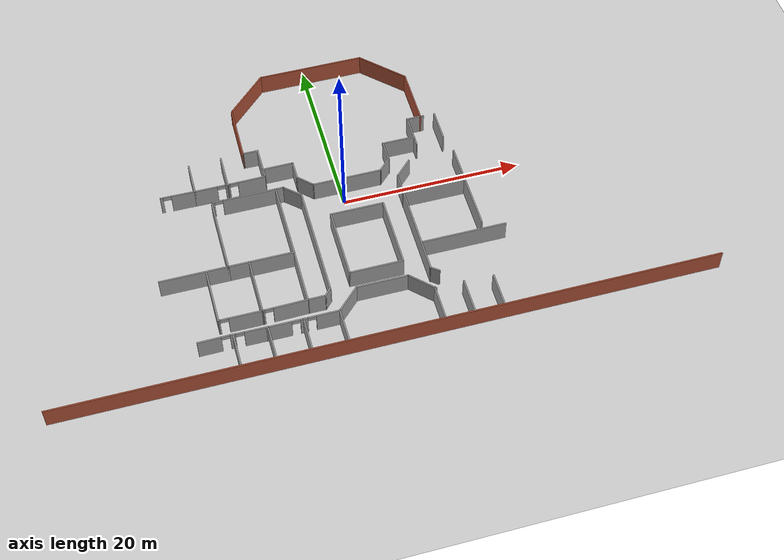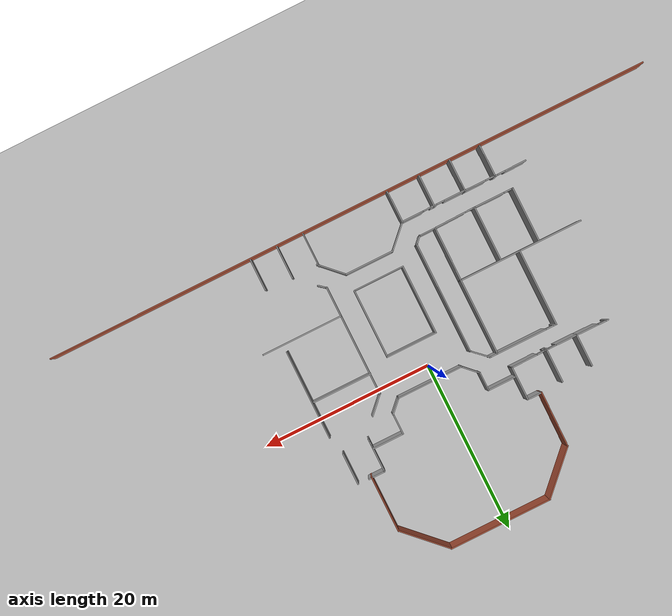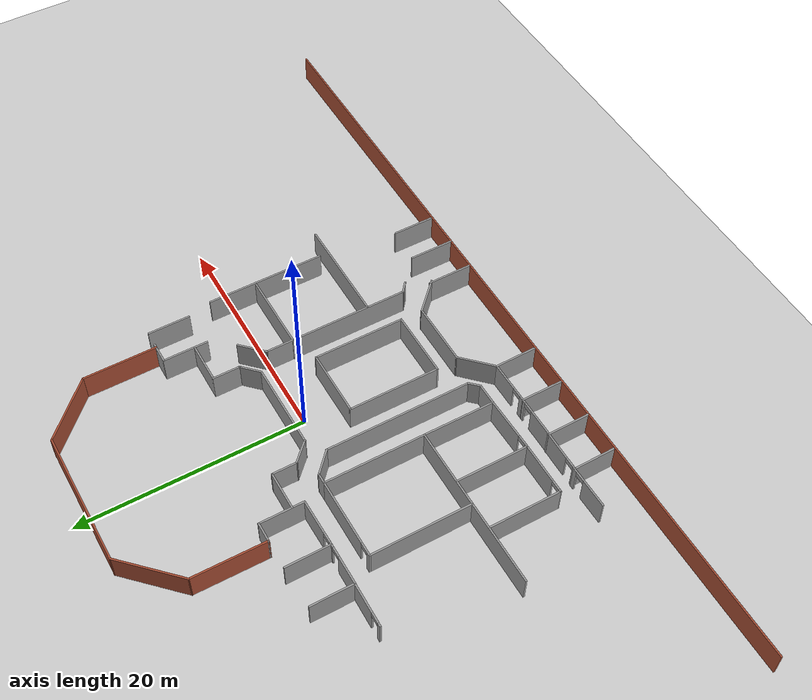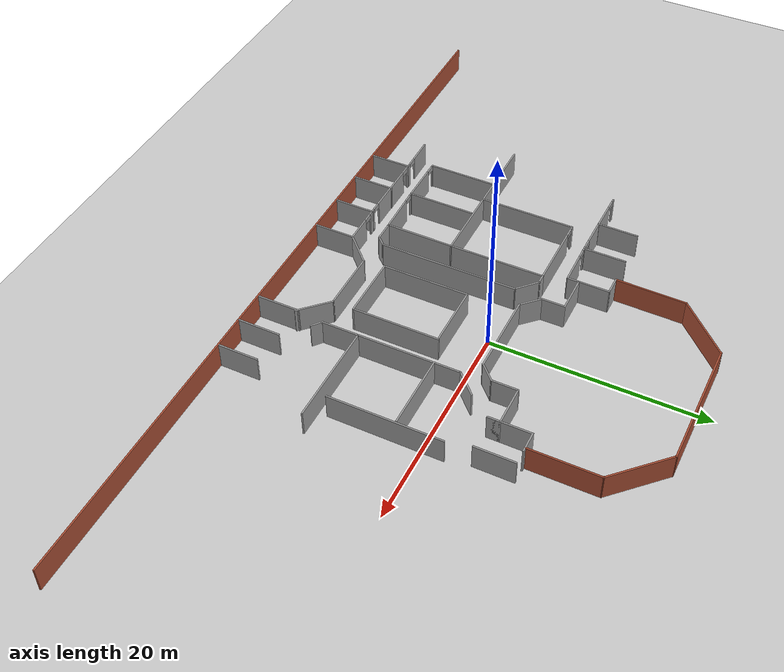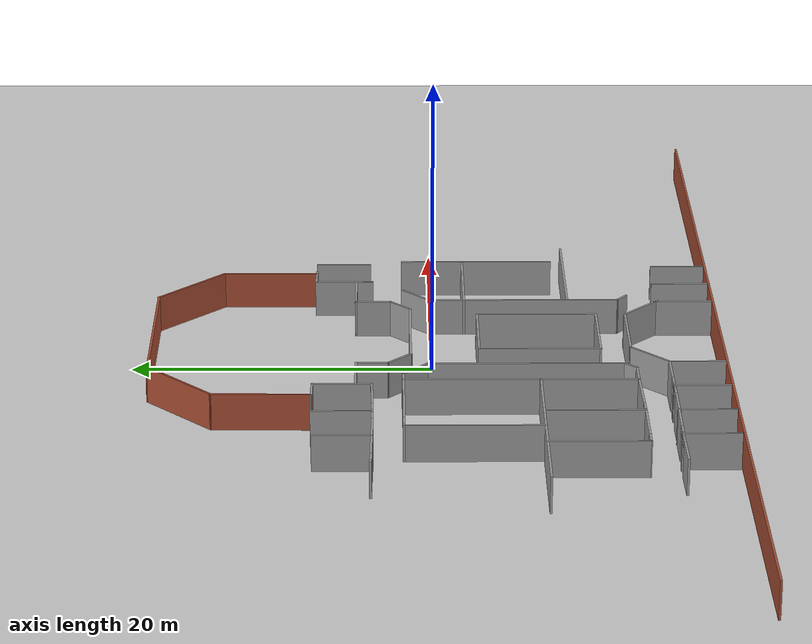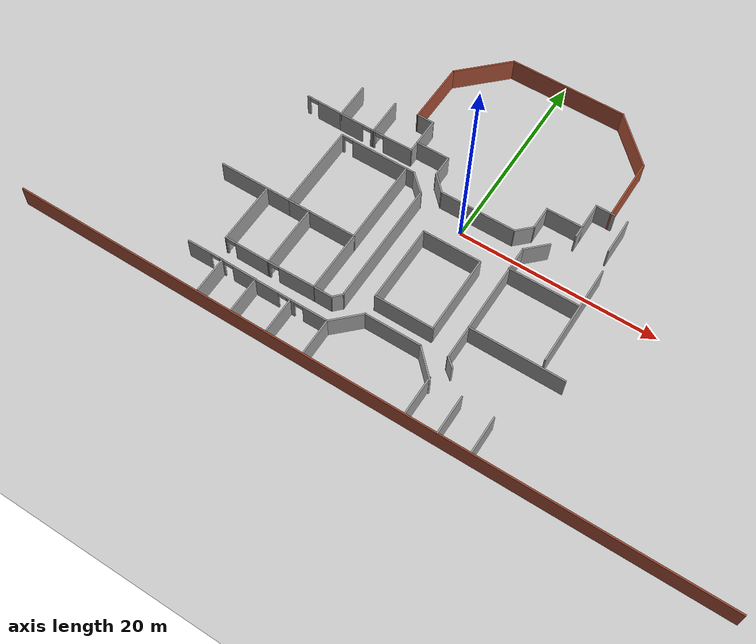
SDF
<sdf version="1.7">
 <world name="default">
  <model name="ground_plane">
   <static>1</static>
   <link name="link">
    <collision name="collision">
     <geometry><plane><normal>0 0 1</normal><size>100 100</size></plane></geometry>
     <surface>
      <contact><collide_bitmask>65535</collide_bitmask></contact>
      <friction><ode><mu>100</mu><mu2>50</mu2></ode></friction>
     </surface>
    </collision>
    <visual name="visual">
     <cast_shadows>0</cast_shadows>
     <geometry><plane><normal>0 0 1</normal><size>100 100</size></plane></geometry>
     <material>
      <script><uri>file://media/materials/scripts/gazebo.material</uri><name>Gazebo/Grey</name></script>
     </material>
    </visual>
   </link>
  </model>
  <model name="OEC_2F_B">
   <pose>0.733156 -0.285133 0 0 -0 0</pose>
   <link name="Wall_101">
    <pose>-18.3822 4.28827 0 0 -0 3.12969</pose>
    <visual name="Wall_101_Visual_0">
     <pose>-0.61431 0 1.25 0 -0 0</pose>
     <geometry><box><size>2.68761 0.15 2.5</size></box></geometry>
     <material>
      <script><uri>file://media/materials/scripts/gazebo.material</uri><name>Gazebo/Grey</name></script>
      <ambient>1 1 1 1</ambient>
     </material>
     <meta><layer>0</layer></meta>
    </visual>
    <collision name="Wall_101_Collision_0">
     <geometry><box><size>2.68761 0.15 2.5</size></box></geometry>
     <pose>-0.61431 0 1.25 0 -0 0</pose>
    </collision>
    <visual name="Wall_101_Visual_1">
     <pose>1.7938 0 1.25 0 -0 0</pose>
     <geometry><box><size>0.328619 0.15 2.5</size></box></geometry>
     <material>
      <script><uri>file://media/materials/scripts/gazebo.material</uri><name>Gazebo/Grey</name></script>
      <ambient>1 1 1 1</ambient>
     </material>
     <meta><layer>0</layer></meta>
    </visual>
    <collision name="Wall_101_Collision_1">
     <geometry><box><size>0.328619 0.15 2.5</size></box></geometry>
     <pose>1.7938 0 1.25 0 -0 0</pose>
    </collision>
    <visual name="Wall_101_Visual_2">
     <pose>1.17949 0 2.25 0 -0 0</pose>
     <geometry><box><size>0.9 0.15 0.5</size></box></geometry>
     <material>
      <script><uri>file://media/materials/scripts/gazebo.material</uri><name>Gazebo/Grey</name></script>
      <ambient>1 1 1 1</ambient>
     </material>
     <meta><layer>0</layer></meta>
    </visual>
    <collision name="Wall_101_Collision_2">
     <geometry><box><size>0.9 0.15 0.5</size></box></geometry>
     <pose>1.17949 0 2.25 0 -0 0</pose>
    </collision>
   </link>
   <link name="Wall_109">
    <collision name="Wall_109_Collision">
     <geometry><box><size>1 0.15 2.5</size></box></geometry>
     <pose>0 0 1.25 0 -0 0</pose>
    </collision>
    <visual name="Wall_109_Visual">
     <pose>0 0 1.25 0 -0 0</pose>
     <geometry><box><size>1 0.15 2.5</size></box></geometry>
     <material>
      <script><uri>file://media/materials/scripts/gazebo.material</uri><name>Gazebo/Grey</name></script>
      <ambient>1 1 1 1</ambient>
     </material>
     <meta><layer>0</layer></meta>
    </visual>
    <pose>-7.50932 2.23651 0 0 -0 3.14159</pose>
   </link>
   <link name="Wall_110">
    <pose>-11.4843 2.23651 0 0 -0 3.14159</pose>
    <visual name="Wall_110_Visual_0">
     <pose>-0.645977 0 1.25 0 -0 0</pose>
     <geometry><box><size>5.95805 0.15 2.5</size></box></geometry>
     <material>
      <script><uri>file://media/materials/scripts/gazebo.material</uri><name>Gazebo/Grey</name></script>
      <ambient>1 1 1 1</ambient>
     </material>
     <meta><layer>0</layer></meta>
    </visual>
    <collision name="Wall_110_Collision_0">
     <geometry><box><size>5.95805 0.15 2.5</size></box></geometry>
     <pose>-0.645977 0 1.25 0 -0 0</pose>
    </collision>
    <visual name="Wall_110_Visual_1">
     <pose>3.42902 0 1.25 0 -0 0</pose>
     <geometry><box><size>0.391954 0.15 2.5</size></box></geometry>
     <material>
      <script><uri>file://media/materials/scripts/gazebo.material</uri><name>Gazebo/Grey</name></script>
      <ambient>1 1 1 1</ambient>
     </material>
     <meta><layer>0</layer></meta>
    </visual>
    <collision name="Wall_110_Collision_1">
     <geometry><box><size>0.391954 0.15 2.5</size></box></geometry>
     <pose>3.42902 0 1.25 0 -0 0</pose>
    </collision>
    <visual name="Wall_110_Visual_2">
     <pose>2.78305 0 2.25 0 -0 0</pose>
     <geometry><box><size>0.9 0.15 0.5</size></box></geometry>
     <material>
      <script><uri>file://media/materials/scripts/gazebo.material</uri><name>Gazebo/Grey</name></script>
      <ambient>1 1 1 1</ambient>
     </material>
     <meta><layer>0</layer></meta>
    </visual>
    <collision name="Wall_110_Collision_2">
     <geometry><box><size>0.9 0.15 0.5</size></box></geometry>
     <pose>2.78305 0 2.25 0 -0 0</pose>
    </collision>
   </link>
   <link name="Wall_118">
    <collision name="Wall_118_Collision">
     <geometry><box><size>9 0.15 2.5</size></box></geometry>
     <pose>0 0 1.25 0 -0 0</pose>
    </collision>
    <visual name="Wall_118_Visual">
     <pose>0 0 1.25 0 -0 0</pose>
     <geometry><box><size>9 0.15 2.5</size></box></geometry>
     <material>
      <script><uri>file://media/materials/scripts/gazebo.material</uri><name>Gazebo/Grey</name></script>
      <ambient>1 1 1 1</ambient>
     </material>
     <meta><layer>0</layer></meta>
    </visual>
    <pose>-7.93432 -2.1885 0 0 -0 -1.5708</pose>
   </link>
   <link name="Wall_120">
    <collision name="Wall_120_Collision">
     <geometry><box><size>9 0.15 2.5</size></box></geometry>
     <pose>0 0 1.25 0 -0 0</pose>
    </collision>
    <visual name="Wall_120_Visual">
     <pose>0 0 1.25 0 -0 0</pose>
     <geometry><box><size>9 0.15 2.5</size></box></geometry>
     <material>
      <script><uri>file://media/materials/scripts/gazebo.material</uri><name>Gazebo/Grey</name></script>
      <ambient>1 1 1 1</ambient>
     </material>
     <meta><layer>0</layer></meta>
    </visual>
    <pose>-15.0343 -2.1885 0 0 -0 -1.5708</pose>
   </link>
   <link name="Wall_127">
    <collision name="Wall_127_Collision">
     <geometry><box><size>7.25 0.15 2.5</size></box></geometry>
     <pose>0 0 1.25 0 -0 0</pose>
    </collision>
    <visual name="Wall_127_Visual">
     <pose>0 0 1.25 0 -0 0</pose>
     <geometry><box><size>7.25 0.15 2.5</size></box></geometry>
     <material>
      <script><uri>file://media/materials/scripts/gazebo.material</uri><name>Gazebo/Grey</name></script>
      <ambient>1 1 1 1</ambient>
     </material>
     <meta><layer>0</layer></meta>
    </visual>
    <pose>-11.4843 -6.6135 0 0 -0 3.14159</pose>
   </link>
   <link name="Wall_128">
    <collision name="Wall_128_Collision">
     <geometry><box><size>7.5 0.15 2.5</size></box></geometry>
     <pose>0 0 1.25 0 -0 0</pose>
    </collision>
    <visual name="Wall_128_Visual">
     <pose>0 0 1.25 0 -0 0</pose>
     <geometry><box><size>7.5 0.15 2.5</size></box></geometry>
     <material>
      <script><uri>file://media/materials/scripts/gazebo.material</uri><name>Gazebo/Grey</name></script>
      <ambient>1 1 1 1</ambient>
     </material>
     <meta><layer>0</layer></meta>
    </visual>
    <pose>-18.7093 -6.6135 0 0 -0 3.14159</pose>
   </link>
   <link name="Wall_14">
    <collision name="Wall_14_Collision">
     <geometry><box><size>6.57649 0.15 2.5</size></box></geometry>
     <pose>0 0 1.25 0 -0 0</pose>
    </collision>
    <visual name="Wall_14_Visual">
     <pose>0 0 1.25 0 -0 0</pose>
     <geometry><box><size>6.57649 0.15 2.5</size></box></geometry>
     <material>
      <script><uri>file://media/materials/scripts/gazebo.material</uri><name>Gazebo/Bricks</name></script>
      <ambient>1 1 1 1</ambient>
     </material>
     <meta><layer>0</layer></meta>
    </visual>
    <pose>-10.2885 11.3541 0 0 -0 1.55896</pose>
   </link>
   <link name="Wall_15">
    <collision name="Wall_15_Collision">
     <geometry><box><size>6.25 0.15 2.5</size></box></geometry>
     <pose>0 0 1.25 0 -0 0</pose>
    </collision>
    <visual name="Wall_15_Visual">
     <pose>0 0 1.25 0 -0 0</pose>
     <geometry><box><size>6.25 0.15 2.5</size></box></geometry>
     <material>
      <script><uri>file://media/materials/scripts/gazebo.material</uri><name>Gazebo/Bricks</name></script>
      <ambient>1 1 1 1</ambient>
     </material>
     <meta><layer>0</layer></meta>
    </visual>
    <pose>-8.09384 16.7238 0 0 -0 0.785398</pose>
   </link>
   <link name="Wall_168">
    <collision name="Wall_168_Collision">
     <geometry><box><size>6.5 0.15 2.5</size></box></geometry>
     <pose>0 0 1.25 0 -0 0</pose>
    </collision>
    <visual name="Wall_168_Visual">
     <pose>0 0 1.25 0 -0 0</pose>
     <geometry><box><size>6.5 0.15 2.5</size></box></geometry>
     <material>
      <script><uri>file://media/materials/scripts/gazebo.material</uri><name>Gazebo/Grey</name></script>
      <ambient>1 1 1 1</ambient>
     </material>
     <meta><layer>0</layer></meta>
    </visual>
    <pose>-17.3981 -9.8333 0 0 -0 -1.5708</pose>
   </link>
   <link name="Wall_171">
    <collision name="Wall_171_Collision">
     <geometry><box><size>6.5 0.15 2.5</size></box></geometry>
     <pose>0 0 1.25 0 -0 0</pose>
    </collision>
    <visual name="Wall_171_Visual">
     <pose>0 0 1.25 0 -0 0</pose>
     <geometry><box><size>6.5 0.15 2.5</size></box></geometry>
     <material>
      <script><uri>file://media/materials/scripts/gazebo.material</uri><name>Gazebo/Grey</name></script>
      <ambient>1 1 1 1</ambient>
     </material>
     <meta><layer>0</layer></meta>
    </visual>
    <pose>-12.7807 -9.85079 0 0 -0 -1.5708</pose>
   </link>
   <link name="Wall_173">
    <collision name="Wall_173_Collision">
     <geometry><box><size>6.46512 0.15 2.5</size></box></geometry>
     <pose>0 0 1.25 0 -0 0</pose>
    </collision>
    <visual name="Wall_173_Visual">
     <pose>0 0 1.25 0 -0 0</pose>
     <geometry><box><size>6.46512 0.15 2.5</size></box></geometry>
     <material>
      <script><uri>file://media/materials/scripts/gazebo.material</uri><name>Gazebo/Grey</name></script>
      <ambient>1 1 1 1</ambient>
     </material>
     <meta><layer>0</layer></meta>
    </visual>
    <pose>-7.95181 -9.77101 0 0 -0 -1.57634</pose>
   </link>
   <link name="Wall_174">
    <collision name="Wall_174_Collision">
     <geometry><box><size>2 0.15 2.5</size></box></geometry>
     <pose>0 0 1.25 0 -0 0</pose>
    </collision>
    <visual name="Wall_174_Visual">
     <pose>0 0 1.25 0 -0 0</pose>
     <geometry><box><size>2 0.15 2.5</size></box></geometry>
     <material>
      <script><uri>file://media/materials/scripts/gazebo.material</uri><name>Gazebo/Grey</name></script>
      <ambient>1 1 1 1</ambient>
     </material>
     <meta><layer>0</layer></meta>
    </visual>
    <pose>-7.02681 -12.9285 0 0 -0 0</pose>
   </link>
   <link name="Wall_176">
    <pose>-10.3663 -12.9772 0 0 -0 -3.12145</pose>
    <visual name="Wall_176_Visual_0">
     <pose>-0.604203 0 1.25 0 -0 0</pose>
     <geometry><box><size>3.77147 0.15 2.5</size></box></geometry>
     <material>
      <script><uri>file://media/materials/scripts/gazebo.material</uri><name>Gazebo/Grey</name></script>
      <ambient>1 1 1 1</ambient>
     </material>
     <meta><layer>0</layer></meta>
    </visual>
    <collision name="Wall_176_Collision_0">
     <geometry><box><size>3.77147 0.15 2.5</size></box></geometry>
     <pose>-0.604203 0 1.25 0 -0 0</pose>
    </collision>
    <visual name="Wall_176_Visual_1">
     <pose>2.33574 0 1.25 0 -0 0</pose>
     <geometry><box><size>0.308406 0.15 2.5</size></box></geometry>
     <material>
      <script><uri>file://media/materials/scripts/gazebo.material</uri><name>Gazebo/Grey</name></script>
      <ambient>1 1 1 1</ambient>
     </material>
     <meta><layer>0</layer></meta>
    </visual>
    <collision name="Wall_176_Collision_1">
     <geometry><box><size>0.308406 0.15 2.5</size></box></geometry>
     <pose>2.33574 0 1.25 0 -0 0</pose>
    </collision>
    <visual name="Wall_176_Visual_2">
     <pose>1.73153 0 2.25 0 -0 0</pose>
     <geometry><box><size>0.9 0.15 0.5</size></box></geometry>
     <material>
      <script><uri>file://media/materials/scripts/gazebo.material</uri><name>Gazebo/Grey</name></script>
      <ambient>1 1 1 1</ambient>
     </material>
     <meta><layer>0</layer></meta>
    </visual>
    <collision name="Wall_176_Collision_2">
     <geometry><box><size>0.9 0.15 0.5</size></box></geometry>
     <pose>1.73153 0 2.25 0 -0 0</pose>
    </collision>
   </link>
   <link name="Wall_177">
    <pose>-15.0894 -13.017 0 0 -0 3.13781</pose>
    <visual name="Wall_177_Visual_0">
     <pose>-0.568407 0 1.25 0 -0 0</pose>
     <geometry><box><size>3.6306 0.15 2.5</size></box></geometry>
     <material>
      <script><uri>file://media/materials/scripts/gazebo.material</uri><name>Gazebo/Grey</name></script>
      <ambient>1 1 1 1</ambient>
     </material>
     <meta><layer>0</layer></meta>
    </visual>
    <collision name="Wall_177_Collision_0">
     <geometry><box><size>3.6306 0.15 2.5</size></box></geometry>
     <pose>-0.568407 0 1.25 0 -0 0</pose>
    </collision>
    <visual name="Wall_177_Visual_1">
     <pose>2.2653 0 1.25 0 -0 0</pose>
     <geometry><box><size>0.236813 0.15 2.5</size></box></geometry>
     <material>
      <script><uri>file://media/materials/scripts/gazebo.material</uri><name>Gazebo/Grey</name></script>
      <ambient>1 1 1 1</ambient>
     </material>
     <meta><layer>0</layer></meta>
    </visual>
    <collision name="Wall_177_Collision_1">
     <geometry><box><size>0.236813 0.15 2.5</size></box></geometry>
     <pose>2.2653 0 1.25 0 -0 0</pose>
    </collision>
    <visual name="Wall_177_Visual_2">
     <pose>1.69689 0 2.25 0 -0 0</pose>
     <geometry><box><size>0.9 0.15 0.5</size></box></geometry>
     <material>
      <script><uri>file://media/materials/scripts/gazebo.material</uri><name>Gazebo/Grey</name></script>
      <ambient>1 1 1 1</ambient>
     </material>
     <meta><layer>0</layer></meta>
    </visual>
    <collision name="Wall_177_Collision_2">
     <geometry><box><size>0.9 0.15 0.5</size></box></geometry>
     <pose>1.69689 0 2.25 0 -0 0</pose>
    </collision>
   </link>
   <link name="Wall_18">
    <collision name="Wall_18_Collision">
     <geometry><box><size>12 0.15 2.5</size></box></geometry>
     <pose>0 0 1.25 0 -0 0</pose>
    </collision>
    <visual name="Wall_18_Visual">
     <pose>0 0 1.25 0 -0 0</pose>
     <geometry><box><size>12 0.15 2.5</size></box></geometry>
     <material>
      <script><uri>file://media/materials/scripts/gazebo.material</uri><name>Gazebo/Bricks</name></script>
      <ambient>1 1 1 1</ambient>
     </material>
     <meta><layer>0</layer></meta>
    </visual>
    <pose>-0.012163 18.8805 0 0 -0 0</pose>
   </link>
   <link name="Wall_19">
    <collision name="Wall_19_Collision">
     <geometry><box><size>6.25 0.15 2.5</size></box></geometry>
     <pose>0 0 1.25 0 -0 0</pose>
    </collision>
    <visual name="Wall_19_Visual">
     <pose>0 0 1.25 0 -0 0</pose>
     <geometry><box><size>6.25 0.15 2.5</size></box></geometry>
     <material>
      <script><uri>file://media/materials/scripts/gazebo.material</uri><name>Gazebo/Bricks</name></script>
      <ambient>1 1 1 1</ambient>
     </material>
     <meta><layer>0</layer></meta>
    </visual>
    <pose>8.06951 16.7238 0 0 -0 -0.785398</pose>
   </link>
   <link name="Wall_192">
    <collision name="Wall_192_Collision">
     <geometry><box><size>3.7767 0.15 2.5</size></box></geometry>
     <pose>0 0 1.25 0 -0 0</pose>
    </collision>
    <visual name="Wall_192_Visual">
     <pose>0 0 1.25 0 -0 0</pose>
     <geometry><box><size>3.7767 0.15 2.5</size></box></geometry>
     <material>
      <script><uri>file://media/materials/scripts/gazebo.material</uri><name>Gazebo/Grey</name></script>
      <ambient>1 1 1 1</ambient>
     </material>
     <meta><layer>0</layer></meta>
    </visual>
    <pose>-16.2728 -16.8977 0 0 -0 1.57813</pose>
   </link>
   <link name="Wall_193">
    <pose>-18.1215 -15.0791 0 0 -0 -3.12999</pose>
    <visual name="Wall_193_Visual_0">
     <pose>-1.71308 0 1.25 0 -0 0</pose>
     <geometry><box><size>0.394916 0.15 2.5</size></box></geometry>
     <material>
      <script><uri>file://media/materials/scripts/gazebo.material</uri><name>Gazebo/Grey</name></script>
      <ambient>1 1 1 1</ambient>
     </material>
     <meta><layer>0</layer></meta>
    </visual>
    <collision name="Wall_193_Collision_0">
     <geometry><box><size>0.394916 0.15 2.5</size></box></geometry>
     <pose>-1.71308 0 1.25 0 -0 0</pose>
    </collision>
    <visual name="Wall_193_Visual_1">
     <pose>0.647458 0 1.25 0 -0 0</pose>
     <geometry><box><size>2.52616 0.15 2.5</size></box></geometry>
     <material>
      <script><uri>file://media/materials/scripts/gazebo.material</uri><name>Gazebo/Grey</name></script>
      <ambient>1 1 1 1</ambient>
     </material>
     <meta><layer>0</layer></meta>
    </visual>
    <collision name="Wall_193_Collision_1">
     <geometry><box><size>2.52616 0.15 2.5</size></box></geometry>
     <pose>0.647458 0 1.25 0 -0 0</pose>
    </collision>
    <visual name="Wall_193_Visual_2">
     <pose>-1.06562 0 2.25 0 -0 0</pose>
     <geometry><box><size>0.9 0.15 0.5</size></box></geometry>
     <material>
      <script><uri>file://media/materials/scripts/gazebo.material</uri><name>Gazebo/Grey</name></script>
      <ambient>1 1 1 1</ambient>
     </material>
     <meta><layer>0</layer></meta>
    </visual>
    <collision name="Wall_193_Collision_2">
     <geometry><box><size>0.9 0.15 0.5</size></box></geometry>
     <pose>-1.06562 0 2.25 0 -0 0</pose>
    </collision>
   </link>
   <link name="Wall_195">
    <collision name="Wall_195_Collision">
     <geometry><box><size>3.8831 0.15 2.5</size></box></geometry>
     <pose>0 0 1.25 0 -0 0</pose>
    </collision>
    <visual name="Wall_195_Visual">
     <pose>0 0 1.25 0 -0 0</pose>
     <geometry><box><size>3.8831 0.15 2.5</size></box></geometry>
     <material>
      <script><uri>file://media/materials/scripts/gazebo.material</uri><name>Gazebo/Grey</name></script>
      <ambient>1 1 1 1</ambient>
     </material>
     <meta><layer>0</layer></meta>
    </visual>
    <pose>-12.6552 -16.9509 0 0 -0 1.57792</pose>
   </link>
   <link name="Wall_196">
    <pose>-14.4906 -15.0977 0 0 -0 3.13418</pose>
    <visual name="Wall_196_Visual_0">
     <pose>-0.60744 0 1.25 0 -0 0</pose>
     <geometry><box><size>2.52703 0.15 2.5</size></box></geometry>
     <material>
      <script><uri>file://media/materials/scripts/gazebo.material</uri><name>Gazebo/Grey</name></script>
      <ambient>1 1 1 1</ambient>
     </material>
     <meta><layer>0</layer></meta>
    </visual>
    <collision name="Wall_196_Collision_0">
     <geometry><box><size>2.52703 0.15 2.5</size></box></geometry>
     <pose>-0.60744 0 1.25 0 -0 0</pose>
    </collision>
    <visual name="Wall_196_Visual_1">
     <pose>1.71352 0 1.25 0 -0 0</pose>
     <geometry><box><size>0.31488 0.15 2.5</size></box></geometry>
     <material>
      <script><uri>file://media/materials/scripts/gazebo.material</uri><name>Gazebo/Grey</name></script>
      <ambient>1 1 1 1</ambient>
     </material>
     <meta><layer>0</layer></meta>
    </visual>
    <collision name="Wall_196_Collision_1">
     <geometry><box><size>0.31488 0.15 2.5</size></box></geometry>
     <pose>1.71352 0 1.25 0 -0 0</pose>
    </collision>
    <visual name="Wall_196_Visual_2">
     <pose>1.10608 0 2.25 0 -0 0</pose>
     <geometry><box><size>0.9 0.15 0.5</size></box></geometry>
     <material>
      <script><uri>file://media/materials/scripts/gazebo.material</uri><name>Gazebo/Grey</name></script>
      <ambient>1 1 1 1</ambient>
     </material>
     <meta><layer>0</layer></meta>
    </visual>
    <collision name="Wall_196_Collision_2">
     <geometry><box><size>0.9 0.15 0.5</size></box></geometry>
     <pose>1.10608 0 2.25 0 -0 0</pose>
    </collision>
   </link>
   <link name="Wall_198">
    <collision name="Wall_198_Collision">
     <geometry><box><size>3.75 0.15 2.5</size></box></geometry>
     <pose>0 0 1.25 0 -0 0</pose>
    </collision>
    <visual name="Wall_198_Visual">
     <pose>0 0 1.25 0 -0 0</pose>
     <geometry><box><size>3.75 0.15 2.5</size></box></geometry>
     <material>
      <script><uri>file://media/materials/scripts/gazebo.material</uri><name>Gazebo/Grey</name></script>
      <ambient>1 1 1 1</ambient>
     </material>
     <meta><layer>0</layer></meta>
    </visual>
    <pose>-8.94448 -16.9376 0 0 -0 1.5708</pose>
   </link>
   <link name="Wall_199">
    <pose>-10.8695 -15.1376 0 0 -0 3.14159</pose>
    <visual name="Wall_199_Visual_0">
     <pose>-1.7885 0 1.25 0 -0 0</pose>
     <geometry><box><size>0.423006 0.15 2.5</size></box></geometry>
     <material>
      <script><uri>file://media/materials/scripts/gazebo.material</uri><name>Gazebo/Grey</name></script>
      <ambient>1 1 1 1</ambient>
     </material>
     <meta><layer>0</layer></meta>
    </visual>
    <collision name="Wall_199_Collision_0">
     <geometry><box><size>0.423006 0.15 2.5</size></box></geometry>
     <pose>-1.7885 0 1.25 0 -0 0</pose>
    </collision>
    <visual name="Wall_199_Visual_1">
     <pose>0.661503 0 1.25 0 -0 0</pose>
     <geometry><box><size>2.67699 0.15 2.5</size></box></geometry>
     <material>
      <script><uri>file://media/materials/scripts/gazebo.material</uri><name>Gazebo/Grey</name></script>
      <ambient>1 1 1 1</ambient>
     </material>
     <meta><layer>0</layer></meta>
    </visual>
    <collision name="Wall_199_Collision_1">
     <geometry><box><size>2.67699 0.15 2.5</size></box></geometry>
     <pose>0.661503 0 1.25 0 -0 0</pose>
    </collision>
    <visual name="Wall_199_Visual_2">
     <pose>-1.12699 0 2.25 0 -0 0</pose>
     <geometry><box><size>0.9 0.15 0.5</size></box></geometry>
     <material>
      <script><uri>file://media/materials/scripts/gazebo.material</uri><name>Gazebo/Grey</name></script>
      <ambient>1 1 1 1</ambient>
     </material>
     <meta><layer>0</layer></meta>
    </visual>
    <collision name="Wall_199_Collision_2">
     <geometry><box><size>0.9 0.15 0.5</size></box></geometry>
     <pose>-1.12699 0 2.25 0 -0 0</pose>
    </collision>
   </link>
   <link name="Wall_20">
    <collision name="Wall_20_Collision">
     <geometry><box><size>6.5575 0.15 2.5</size></box></geometry>
     <pose>0 0 1.25 0 -0 0</pose>
    </collision>
    <visual name="Wall_20_Visual">
     <pose>0 0 1.25 0 -0 0</pose>
     <geometry><box><size>6.5575 0.15 2.5</size></box></geometry>
     <material>
      <script><uri>file://media/materials/scripts/gazebo.material</uri><name>Gazebo/Bricks</name></script>
      <ambient>1 1 1 1</ambient>
     </material>
     <meta><layer>0</layer></meta>
    </visual>
    <pose>10.2262 11.3634 0 0 -0 -1.5708</pose>
   </link>
   <link name="Wall_201">
    <collision name="Wall_201_Collision">
     <geometry><box><size>3.82289 0.15 2.5</size></box></geometry>
     <pose>0 0 1.25 0 -0 0</pose>
    </collision>
    <visual name="Wall_201_Visual">
     <pose>0 0 1.25 0 -0 0</pose>
     <geometry><box><size>3.82289 0.15 2.5</size></box></geometry>
     <material>
      <script><uri>file://media/materials/scripts/gazebo.material</uri><name>Gazebo/Grey</name></script>
      <ambient>1 1 1 1</ambient>
     </material>
     <meta><layer>0</layer></meta>
    </visual>
    <pose>-5.10068 -16.9544 0 0 -0 1.578</pose>
   </link>
   <link name="Wall_202">
    <pose>-7.02919 -15.1278 0 0 -0 -3.13648</pose>
    <visual name="Wall_202_Visual_0">
     <pose>-0.701443 0 1.25 0 -0 0</pose>
     <geometry><box><size>2.57774 0.15 2.5</size></box></geometry>
     <material>
      <script><uri>file://media/materials/scripts/gazebo.material</uri><name>Gazebo/Grey</name></script>
      <ambient>1 1 1 1</ambient>
     </material>
     <meta><layer>0</layer></meta>
    </visual>
    <collision name="Wall_202_Collision_0">
     <geometry><box><size>2.57774 0.15 2.5</size></box></geometry>
     <pose>-0.701443 0 1.25 0 -0 0</pose>
    </collision>
    <visual name="Wall_202_Visual_1">
     <pose>1.73887 0 1.25 0 -0 0</pose>
     <geometry><box><size>0.502885 0.15 2.5</size></box></geometry>
     <material>
      <script><uri>file://media/materials/scripts/gazebo.material</uri><name>Gazebo/Grey</name></script>
      <ambient>1 1 1 1</ambient>
     </material>
     <meta><layer>0</layer></meta>
    </visual>
    <collision name="Wall_202_Collision_1">
     <geometry><box><size>0.502885 0.15 2.5</size></box></geometry>
     <pose>1.73887 0 1.25 0 -0 0</pose>
    </collision>
    <visual name="Wall_202_Visual_2">
     <pose>1.03743 0 2.25 0 -0 0</pose>
     <geometry><box><size>0.9 0.15 0.5</size></box></geometry>
     <material>
      <script><uri>file://media/materials/scripts/gazebo.material</uri><name>Gazebo/Grey</name></script>
      <ambient>1 1 1 1</ambient>
     </material>
     <meta><layer>0</layer></meta>
    </visual>
    <collision name="Wall_202_Collision_2">
     <geometry><box><size>0.9 0.15 0.5</size></box></geometry>
     <pose>1.03743 0 2.25 0 -0 0</pose>
    </collision>
   </link>
   <link name="Wall_204">
    <collision name="Wall_204_Collision">
     <geometry><box><size>3.75 0.15 2.5</size></box></geometry>
     <pose>0 0 1.25 0 -0 0</pose>
    </collision>
    <visual name="Wall_204_Visual">
     <pose>0 0 1.25 0 -0 0</pose>
     <geometry><box><size>3.75 0.15 2.5</size></box></geometry>
     <material>
      <script><uri>file://media/materials/scripts/gazebo.material</uri><name>Gazebo/Grey</name></script>
      <ambient>1 1 1 1</ambient>
     </material>
     <meta><layer>0</layer></meta>
    </visual>
    <pose>11.8531 6.30778 0 0 -0 -1.5708</pose>
   </link>
   <link name="Wall_218">
    <collision name="Wall_218_Collision">
     <geometry><box><size>10.5 0.15 2.5</size></box></geometry>
     <pose>0 0 1.25 0 -0 0</pose>
    </collision>
    <visual name="Wall_218_Visual">
     <pose>0 0 1.25 0 -0 0</pose>
     <geometry><box><size>10.5 0.15 2.5</size></box></geometry>
     <material>
      <script><uri>file://media/materials/scripts/gazebo.material</uri><name>Gazebo/Grey</name></script>
      <ambient>1 1 1 1</ambient>
     </material>
     <meta><layer>0</layer></meta>
    </visual>
    <pose>12.3906 -2.92021 0 0 -0 -1.5708</pose>
   </link>
   <link name="Wall_226">
    <collision name="Wall_226_Collision">
     <geometry><box><size>7 0.15 2.5</size></box></geometry>
     <pose>0 0 1.25 0 -0 0</pose>
    </collision>
    <visual name="Wall_226_Visual">
     <pose>0 0 1.25 0 -0 0</pose>
     <geometry><box><size>7 0.15 2.5</size></box></geometry>
     <material>
      <script><uri>file://media/materials/scripts/gazebo.material</uri><name>Gazebo/Grey</name></script>
      <ambient>1 1 1 1</ambient>
     </material>
     <meta><layer>0</layer></meta>
    </visual>
    <pose>8.77988 -1.93607 0 0 -0 0</pose>
   </link>
   <link name="Wall_228">
    <collision name="Wall_228_Collision">
     <geometry><box><size>9.5 0.15 2.5</size></box></geometry>
     <pose>0 0 1.25 0 -0 0</pose>
    </collision>
    <visual name="Wall_228_Visual">
     <pose>0 0 1.25 0 -0 0</pose>
     <geometry><box><size>9.5 0.15 2.5</size></box></geometry>
     <material>
      <script><uri>file://media/materials/scripts/gazebo.material</uri><name>Gazebo/Grey</name></script>
      <ambient>1 1 1 1</ambient>
     </material>
     <meta><layer>0</layer></meta>
    </visual>
    <pose>10.0911 -8.97182 0 0 -0 0</pose>
   </link>
   <link name="Wall_23">
    <collision name="Wall_23_Collision">
     <geometry><box><size>4 0.15 2.5</size></box></geometry>
     <pose>0 0 1.25 0 -0 0</pose>
    </collision>
    <visual name="Wall_23_Visual">
     <pose>0 0 1.25 0 -0 0</pose>
     <geometry><box><size>4 0.15 2.5</size></box></geometry>
     <material>
      <script><uri>file://media/materials/scripts/gazebo.material</uri><name>Gazebo/Grey</name></script>
      <ambient>1 1 1 1</ambient>
     </material>
     <meta><layer>0</layer></meta>
    </visual>
    <pose>-8.664 6.20876 0 0 -0 1.5708</pose>
   </link>
   <link name="Wall_24">
    <collision name="Wall_24_Collision">
     <geometry><box><size>1.81257 0.15 2.5</size></box></geometry>
     <pose>0 0 1.25 0 -0 0</pose>
    </collision>
    <visual name="Wall_24_Visual">
     <pose>0 0 1.25 0 -0 0</pose>
     <geometry><box><size>1.81257 0.15 2.5</size></box></geometry>
     <material>
      <script><uri>file://media/materials/scripts/gazebo.material</uri><name>Gazebo/Grey</name></script>
      <ambient>1 1 1 1</ambient>
     </material>
     <meta><layer>0</layer></meta>
    </visual>
    <pose>-9.49528 8.13742 0 0 -0 3.1372</pose>
   </link>
   <link name="Wall_250">
    <collision name="Wall_250_Collision">
     <geometry><box><size>4 0.15 2.5</size></box></geometry>
     <pose>0 0 1.25 0 -0 0</pose>
    </collision>
    <visual name="Wall_250_Visual">
     <pose>0 0 1.25 0 -0 0</pose>
     <geometry><box><size>4 0.15 2.5</size></box></geometry>
     <material>
      <script><uri>file://media/materials/scripts/gazebo.material</uri><name>Gazebo/Grey</name></script>
      <ambient>1 1 1 1</ambient>
     </material>
     <meta><layer>0</layer></meta>
    </visual>
    <pose>5.09932 -16.8418 0 0 -0 1.5708</pose>
   </link>
   <link name="Wall_252">
    <collision name="Wall_252_Collision">
     <geometry><box><size>4 0.15 2.5</size></box></geometry>
     <pose>0 0 1.25 0 -0 0</pose>
    </collision>
    <visual name="Wall_252_Visual">
     <pose>0 0 1.25 0 -0 0</pose>
     <geometry><box><size>4 0.15 2.5</size></box></geometry>
     <material>
      <script><uri>file://media/materials/scripts/gazebo.material</uri><name>Gazebo/Grey</name></script>
      <ambient>1 1 1 1</ambient>
     </material>
     <meta><layer>0</layer></meta>
    </visual>
    <pose>8.25486 -16.9227 0 0 -0 1.5708</pose>
   </link>
   <link name="Wall_254">
    <collision name="Wall_254_Collision">
     <geometry><box><size>3.75 0.15 2.5</size></box></geometry>
     <pose>0 0 1.25 0 -0 0</pose>
    </collision>
    <visual name="Wall_254_Visual">
     <pose>0 0 1.25 0 -0 0</pose>
     <geometry><box><size>3.75 0.15 2.5</size></box></geometry>
     <material>
      <script><uri>file://media/materials/scripts/gazebo.material</uri><name>Gazebo/Grey</name></script>
      <ambient>1 1 1 1</ambient>
     </material>
     <meta><layer>0</layer></meta>
    </visual>
    <pose>11.4509 -16.9668 0 0 -0 1.5708</pose>
   </link>
   <link name="Wall_33">
    <collision name="Wall_33_Collision">
     <geometry><box><size>3.5 0.15 2.5</size></box></geometry>
     <pose>0 0 1.25 0 -0 0</pose>
    </collision>
    <visual name="Wall_33_Visual">
     <pose>0 0 1.25 0 -0 0</pose>
     <geometry><box><size>3.5 0.15 2.5</size></box></geometry>
     <material>
      <script><uri>file://media/materials/scripts/gazebo.material</uri><name>Gazebo/Grey</name></script>
      <ambient>1 1 1 1</ambient>
     </material>
     <meta><layer>0</layer></meta>
    </visual>
    <pose>-3.9295 -13.9336 0 0 -0 0.785398</pose>
   </link>
   <link name="Wall_35">
    <collision name="Wall_35_Collision">
     <geometry><box><size>5.75 0.15 2.5</size></box></geometry>
     <pose>0 0 1.25 0 -0 0</pose>
    </collision>
    <visual name="Wall_35_Visual">
     <pose>0 0 1.25 0 -0 0</pose>
     <geometry><box><size>5.75 0.15 2.5</size></box></geometry>
     <material>
      <script><uri>file://media/materials/scripts/gazebo.material</uri><name>Gazebo/Grey</name></script>
      <ambient>1 1 1 1</ambient>
     </material>
     <meta><layer>0</layer></meta>
    </visual>
    <pose>0.0549 -12.7492 0 0 -0 0</pose>
   </link>
   <link name="Wall_36">
    <collision name="Wall_36_Collision">
     <geometry><box><size>3.5 0.15 2.5</size></box></geometry>
     <pose>0 0 1.25 0 -0 0</pose>
    </collision>
    <visual name="Wall_36_Visual">
     <pose>0 0 1.25 0 -0 0</pose>
     <geometry><box><size>3.5 0.15 2.5</size></box></geometry>
     <material>
      <script><uri>file://media/materials/scripts/gazebo.material</uri><name>Gazebo/Grey</name></script>
      <ambient>1 1 1 1</ambient>
     </material>
     <meta><layer>0</layer></meta>
    </visual>
    <pose>4.0393 -13.9336 0 0 -0 -0.785398</pose>
   </link>
   <link name="Wall_42">
    <collision name="Wall_42_Collision">
     <geometry><box><size>1.17447 0.15 2.5</size></box></geometry>
     <pose>0 0 1.25 0 -0 0</pose>
    </collision>
    <visual name="Wall_42_Visual">
     <pose>0 0 1.25 0 -0 0</pose>
     <geometry><box><size>1.17447 0.15 2.5</size></box></geometry>
     <material>
      <script><uri>file://media/materials/scripts/gazebo.material</uri><name>Gazebo/Grey</name></script>
      <ambient>1 1 1 1</ambient>
     </material>
     <meta><layer>0</layer></meta>
    </visual>
    <pose>-5.75065 -12.5556 0 0 -0 0.815441</pose>
   </link>
   <link name="Wall_44">
    <collision name="Wall_44_Collision">
     <geometry><box><size>13 0.15 2.5</size></box></geometry>
     <pose>0 0 1.25 0 -0 0</pose>
    </collision>
    <visual name="Wall_44_Visual">
     <pose>0 0 1.25 0 -0 0</pose>
     <geometry><box><size>13 0.15 2.5</size></box></geometry>
     <material>
      <script><uri>file://media/materials/scripts/gazebo.material</uri><name>Gazebo/Grey</name></script>
      <ambient>1 1 1 1</ambient>
     </material>
     <meta><layer>0</layer></meta>
    </visual>
    <pose>-5.39949 -5.75767 0 0 -0 1.5708</pose>
   </link>
   <link name="Wall_45">
    <collision name="Wall_45_Collision">
     <geometry><box><size>2.45239 0.15 2.5</size></box></geometry>
     <pose>0 0 1.25 0 -0 0</pose>
    </collision>
    <visual name="Wall_45_Visual">
     <pose>0 0 1.25 0 -0 0</pose>
     <geometry><box><size>2.45239 0.15 2.5</size></box></geometry>
     <material>
      <script><uri>file://media/materials/scripts/gazebo.material</uri><name>Gazebo/Grey</name></script>
      <ambient>1 1 1 1</ambient>
     </material>
     <meta><layer>0</layer></meta>
    </visual>
    <pose>-6.24191 1.45192 0 0 -0 2.39172</pose>
   </link>
   <link name="Wall_48">
    <collision name="Wall_48_Collision">
     <geometry><box><size>3.5 0.15 2.5</size></box></geometry>
     <pose>0 0 1.25 0 -0 0</pose>
    </collision>
    <visual name="Wall_48_Visual">
     <pose>0 0 1.25 0 -0 0</pose>
     <geometry><box><size>3.5 0.15 2.5</size></box></geometry>
     <material>
      <script><uri>file://media/materials/scripts/gazebo.material</uri><name>Gazebo/Grey</name></script>
      <ambient>1 1 1 1</ambient>
     </material>
     <meta><layer>0</layer></meta>
    </visual>
    <pose>-6.97523 5.33801 0 0 -0 0</pose>
   </link>
   <link name="Wall_49">
    <collision name="Wall_49_Collision">
     <geometry><box><size>2.25 0.15 2.5</size></box></geometry>
     <pose>0 0 1.25 0 -0 0</pose>
    </collision>
    <visual name="Wall_49_Visual">
     <pose>0 0 1.25 0 -0 0</pose>
     <geometry><box><size>2.25 0.15 2.5</size></box></geometry>
     <material>
      <script><uri>file://media/materials/scripts/gazebo.material</uri><name>Gazebo/Grey</name></script>
      <ambient>1 1 1 1</ambient>
     </material>
     <meta><layer>0</layer></meta>
    </visual>
    <pose>-5.30023 4.28801 0 0 -0 -1.5708</pose>
   </link>
   <link name="Wall_5">
    <collision name="Wall_5_Collision">
     <geometry><box><size>71.75 0.15 2.5</size></box></geometry>
     <pose>0 0 1.25 0 -0 0</pose>
    </collision>
    <visual name="Wall_5_Visual">
     <pose>0 0 1.25 0 -0 0</pose>
     <geometry><box><size>71.75 0.15 2.5</size></box></geometry>
     <material>
      <script><uri>file://media/materials/scripts/gazebo.material</uri><name>Gazebo/Bricks</name></script>
      <ambient>0.760784 0.662745 0.627451 1</ambient>
     </material>
     <meta><layer>0</layer></meta>
    </visual>
    <pose>-0.241646 -18.896 0 0 -0 0</pose>
   </link>
   <link name="Wall_50">
    <collision name="Wall_50_Collision">
     <geometry><box><size>2.25 0.15 2.5</size></box></geometry>
     <pose>0 0 1.25 0 -0 0</pose>
    </collision>
    <visual name="Wall_50_Visual">
     <pose>0 0 1.25 0 -0 0</pose>
     <geometry><box><size>2.25 0.15 2.5</size></box></geometry>
     <material>
      <script><uri>file://media/materials/scripts/gazebo.material</uri><name>Gazebo/Grey</name></script>
      <ambient>1 1 1 1</ambient>
     </material>
     <meta><layer>0</layer></meta>
    </visual>
    <pose>-4.55769 2.49557 0 0 -0 -0.785333</pose>
   </link>
   <link name="Wall_51">
    <collision name="Wall_51_Collision">
     <geometry><box><size>7.75 0.15 2.5</size></box></geometry>
     <pose>0 0 1.25 0 -0 0</pose>
    </collision>
    <visual name="Wall_51_Visual">
     <pose>0 0 1.25 0 -0 0</pose>
     <geometry><box><size>7.75 0.15 2.5</size></box></geometry>
     <material>
      <script><uri>file://media/materials/scripts/gazebo.material</uri><name>Gazebo/Grey</name></script>
      <ambient>1 1 1 1</ambient>
     </material>
     <meta><layer>0</layer></meta>
    </visual>
    <pose>-0.015156 1.75313 0 0 -0 0</pose>
   </link>
   <link name="Wall_52">
    <collision name="Wall_52_Collision">
     <geometry><box><size>2 0.15 2.5</size></box></geometry>
     <pose>0 0 1.25 0 -0 0</pose>
    </collision>
    <visual name="Wall_52_Visual">
     <pose>0 0 1.25 0 -0 0</pose>
     <geometry><box><size>2 0.15 2.5</size></box></geometry>
     <material>
      <script><uri>file://media/materials/scripts/gazebo.material</uri><name>Gazebo/Grey</name></script>
      <ambient>1 1 1 1</ambient>
     </material>
     <meta><layer>0</layer></meta>
    </visual>
    <pose>4.43884 2.40719 0 0 -0 0.785438</pose>
   </link>
   <link name="Wall_53">
    <collision name="Wall_53_Collision">
     <geometry><box><size>2.5 0.15 2.5</size></box></geometry>
     <pose>0 0 1.25 0 -0 0</pose>
    </collision>
    <visual name="Wall_53_Visual">
     <pose>0 0 1.25 0 -0 0</pose>
     <geometry><box><size>2.5 0.15 2.5</size></box></geometry>
     <material>
      <script><uri>file://media/materials/scripts/gazebo.material</uri><name>Gazebo/Grey</name></script>
      <ambient>1 1 1 1</ambient>
     </material>
     <meta><layer>0</layer></meta>
    </visual>
    <pose>5.09284 4.23624 0 0 -0 1.5708</pose>
   </link>
   <link name="Wall_55">
    <collision name="Wall_55_Collision">
     <geometry><box><size>3.75 0.15 2.5</size></box></geometry>
     <pose>0 0 1.25 0 -0 0</pose>
    </collision>
    <visual name="Wall_55_Visual">
     <pose>0 0 1.25 0 -0 0</pose>
     <geometry><box><size>3.75 0.15 2.5</size></box></geometry>
     <material>
      <script><uri>file://media/materials/scripts/gazebo.material</uri><name>Gazebo/Grey</name></script>
      <ambient>1 1 1 1</ambient>
     </material>
     <meta><layer>0</layer></meta>
    </visual>
    <pose>6.89284 5.41124 0 0 -0 0</pose>
   </link>
   <link name="Wall_56">
    <collision name="Wall_56_Collision">
     <geometry><box><size>1.25 0.15 2.5</size></box></geometry>
     <pose>0 0 1.25 0 -0 0</pose>
    </collision>
    <visual name="Wall_56_Visual">
     <pose>0 0 1.25 0 -0 0</pose>
     <geometry><box><size>1.25 0.15 2.5</size></box></geometry>
     <material>
      <script><uri>file://media/materials/scripts/gazebo.material</uri><name>Gazebo/Grey</name></script>
      <ambient>1 1 1 1</ambient>
     </material>
     <meta><layer>0</layer></meta>
    </visual>
    <pose>8.69284 4.86124 0 0 -0 -1.5708</pose>
   </link>
   <link name="Wall_65">
    <collision name="Wall_65_Collision">
     <geometry><box><size>13 0.15 2.5</size></box></geometry>
     <pose>0 0 1.25 0 -0 0</pose>
    </collision>
    <visual name="Wall_65_Visual">
     <pose>0 0 1.25 0 -0 0</pose>
     <geometry><box><size>13 0.15 2.5</size></box></geometry>
     <material>
      <script><uri>file://media/materials/scripts/gazebo.material</uri><name>Gazebo/Grey</name></script>
      <ambient>1 1 1 1</ambient>
     </material>
     <meta><layer>0</layer></meta>
    </visual>
    <pose>5.39104 -5.97323 0 0 -0 -1.5708</pose>
   </link>
   <link name="Wall_66">
    <collision name="Wall_66_Collision">
     <geometry><box><size>1.15543 0.15 2.5</size></box></geometry>
     <pose>0 0 1.25 0 -0 0</pose>
    </collision>
    <visual name="Wall_66_Visual">
     <pose>0 0 1.25 0 -0 0</pose>
     <geometry><box><size>1.15543 0.15 2.5</size></box></geometry>
     <material>
      <script><uri>file://media/materials/scripts/gazebo.material</uri><name>Gazebo/Grey</name></script>
      <ambient>1 1 1 1</ambient>
     </material>
     <meta><layer>0</layer></meta>
    </visual>
    <pose>5.77995 -12.7168 0 0 -0 -0.686273</pose>
   </link>
   <link name="Wall_70">
    <collision name="Wall_70_Collision">
     <geometry><box><size>2.67464 0.15 2.5</size></box></geometry>
     <pose>0 0 1.25 0 -0 0</pose>
    </collision>
    <visual name="Wall_70_Visual">
     <pose>0 0 1.25 0 -0 0</pose>
     <geometry><box><size>2.67464 0.15 2.5</size></box></geometry>
     <material>
      <script><uri>file://media/materials/scripts/gazebo.material</uri><name>Gazebo/Grey</name></script>
      <ambient>1 1 1 1</ambient>
     </material>
     <meta><layer>0</layer></meta>
    </visual>
    <pose>6.27995 1.34804 0 0 -0 -2.35207</pose>
   </link>
   <link name="Wall_72">
    <collision name="Wall_72_Collision">
     <geometry><box><size>6 0.15 2.5</size></box></geometry>
     <pose>0 0 1.25 0 -0 0</pose>
    </collision>
    <visual name="Wall_72_Visual">
     <pose>0 0 1.25 0 -0 0</pose>
     <geometry><box><size>6 0.15 2.5</size></box></geometry>
     <material>
      <script><uri>file://media/materials/scripts/gazebo.material</uri><name>Gazebo/Grey</name></script>
      <ambient>1 1 1 1</ambient>
     </material>
     <meta><layer>0</layer></meta>
    </visual>
    <pose>-0.046021 -2.76127 0 0 -0 0</pose>
   </link>
   <link name="Wall_73">
    <collision name="Wall_73_Collision">
     <geometry><box><size>8.16182 0.15 2.5</size></box></geometry>
     <pose>0 0 1.25 0 -0 0</pose>
    </collision>
    <visual name="Wall_73_Visual">
     <pose>0 0 1.25 0 -0 0</pose>
     <geometry><box><size>8.16182 0.15 2.5</size></box></geometry>
     <material>
      <script><uri>file://media/materials/scripts/gazebo.material</uri><name>Gazebo/Grey</name></script>
      <ambient>1 1 1 1</ambient>
     </material>
     <meta><layer>0</layer></meta>
    </visual>
    <pose>2.87898 -6.76718 0 0 -0 -1.5708</pose>
   </link>
   <link name="Wall_74">
    <collision name="Wall_74_Collision">
     <geometry><box><size>6 0.15 2.5</size></box></geometry>
     <pose>0 0 1.25 0 -0 0</pose>
    </collision>
    <visual name="Wall_74_Visual">
     <pose>0 0 1.25 0 -0 0</pose>
     <geometry><box><size>6 0.15 2.5</size></box></geometry>
     <material>
      <script><uri>file://media/materials/scripts/gazebo.material</uri><name>Gazebo/Grey</name></script>
      <ambient>1 1 1 1</ambient>
     </material>
     <meta><layer>0</layer></meta>
    </visual>
    <pose>-0.046021 -10.7731 0 0 -0 3.14159</pose>
   </link>
   <link name="Wall_75">
    <collision name="Wall_75_Collision">
     <geometry><box><size>8.16182 0.15 2.5</size></box></geometry>
     <pose>0 0 1.25 0 -0 0</pose>
    </collision>
    <visual name="Wall_75_Visual">
     <pose>0 0 1.25 0 -0 0</pose>
     <geometry><box><size>8.16182 0.15 2.5</size></box></geometry>
     <material>
      <script><uri>file://media/materials/scripts/gazebo.material</uri><name>Gazebo/Grey</name></script>
      <ambient>1 1 1 1</ambient>
     </material>
     <meta><layer>0</layer></meta>
    </visual>
    <pose>-2.97102 -6.76718 0 0 -0 1.5708</pose>
   </link>
   <link name="Wall_80">
    <collision name="Wall_80_Collision">
     <geometry><box><size>4 0.15 2.5</size></box></geometry>
     <pose>0 0 1.25 0 -0 0</pose>
    </collision>
    <visual name="Wall_80_Visual">
     <pose>0 0 1.25 0 -0 0</pose>
     <geometry><box><size>4 0.15 2.5</size></box></geometry>
     <material>
      <script><uri>file://media/materials/scripts/gazebo.material</uri><name>Gazebo/Grey</name></script>
      <ambient>1 1 1 1</ambient>
     </material>
     <meta><layer>0</layer></meta>
    </visual>
    <pose>8.69284 6.23624 0 0 -0 1.5708</pose>
   </link>
   <link name="Wall_84">
    <collision name="Wall_84_Collision">
     <geometry><box><size>2 0.15 2.5</size></box></geometry>
     <pose>0 0 1.25 0 -0 0</pose>
    </collision>
    <visual name="Wall_84_Visual">
     <pose>0 0 1.25 0 -0 0</pose>
     <geometry><box><size>2 0.15 2.5</size></box></geometry>
     <material>
      <script><uri>file://media/materials/scripts/gazebo.material</uri><name>Gazebo/Grey</name></script>
      <ambient>1 1 1 1</ambient>
     </material>
     <meta><layer>0</layer></meta>
    </visual>
    <pose>9.61784 8.16124 0 0 -0 0</pose>
   </link>
   <link name="Wall_86">
    <collision name="Wall_86_Collision">
     <geometry><box><size>4 0.15 2.5</size></box></geometry>
     <pose>0 0 1.25 0 -0 0</pose>
    </collision>
    <visual name="Wall_86_Visual">
     <pose>0 0 1.25 0 -0 0</pose>
     <geometry><box><size>4 0.15 2.5</size></box></geometry>
     <material>
      <script><uri>file://media/materials/scripts/gazebo.material</uri><name>Gazebo/Grey</name></script>
      <ambient>1 1 1 1</ambient>
     </material>
     <meta><layer>0</layer></meta>
    </visual>
    <pose>-12.8481 6.17805 0 0 -0 -1.5708</pose>
   </link>
   <link name="Wall_88">
    <collision name="Wall_88_Collision">
     <geometry><box><size>3.85582 0.15 2.5</size></box></geometry>
     <pose>0 0 1.25 0 -0 0</pose>
    </collision>
    <visual name="Wall_88_Visual">
     <pose>0 0 1.25 0 -0 0</pose>
     <geometry><box><size>3.85582 0.15 2.5</size></box></geometry>
     <material>
      <script><uri>file://media/materials/scripts/gazebo.material</uri><name>Gazebo/Grey</name></script>
      <ambient>1 1 1 1</ambient>
     </material>
     <meta><layer>0</layer></meta>
    </visual>
    <pose>-16.4926 6.10553 0 0 -0 -1.57437</pose>
   </link>
   <link name="Wall_98">
    <pose>-10.756 4.2618 0 0 -0 -3.13109</pose>
    <visual name="Wall_98_Visual_0">
     <pose>-0.607056 0 1.25 0 -0 0</pose>
     <geometry><box><size>3.12003 0.15 2.5</size></box></geometry>
     <material>
      <script><uri>file://media/materials/scripts/gazebo.material</uri><name>Gazebo/Grey</name></script>
      <ambient>1 1 1 1</ambient>
     </material>
     <meta><layer>0</layer></meta>
    </visual>
    <collision name="Wall_98_Collision_0">
     <geometry><box><size>3.12003 0.15 2.5</size></box></geometry>
     <pose>-0.607056 0 1.25 0 -0 0</pose>
    </collision>
    <visual name="Wall_98_Visual_1">
     <pose>2.01002 0 1.25 0 -0 0</pose>
     <geometry><box><size>0.314113 0.15 2.5</size></box></geometry>
     <material>
      <script><uri>file://media/materials/scripts/gazebo.material</uri><name>Gazebo/Grey</name></script>
      <ambient>1 1 1 1</ambient>
     </material>
     <meta><layer>0</layer></meta>
    </visual>
    <collision name="Wall_98_Collision_1">
     <geometry><box><size>0.314113 0.15 2.5</size></box></geometry>
     <pose>2.01002 0 1.25 0 -0 0</pose>
    </collision>
    <visual name="Wall_98_Visual_2">
     <pose>1.40296 0 2.25 0 -0 0</pose>
     <geometry><box><size>0.9 0.15 0.5</size></box></geometry>
     <material>
      <script><uri>file://media/materials/scripts/gazebo.material</uri><name>Gazebo/Grey</name></script>
      <ambient>1 1 1 1</ambient>
     </material>
     <meta><layer>0</layer></meta>
    </visual>
    <collision name="Wall_98_Collision_2">
     <geometry><box><size>0.9 0.15 0.5</size></box></geometry>
     <pose>1.40296 0 2.25 0 -0 0</pose>
    </collision>
   </link>
   <link name="Wall_99">
    <pose>-14.6737 4.24623 0 0 -0 3.13809</pose>
    <visual name="Wall_99_Visual_0">
     <pose>-1.73124 0 1.25 0 -0 0</pose>
     <geometry><box><size>0.339064 0.15 2.5</size></box></geometry>
     <material>
      <script><uri>file://media/materials/scripts/gazebo.material</uri><name>Gazebo/Grey</name></script>
      <ambient>1 1 1 1</ambient>
     </material>
     <meta><layer>0</layer></meta>
    </visual>
    <collision name="Wall_99_Collision_0">
     <geometry><box><size>0.339064 0.15 2.5</size></box></geometry>
     <pose>-1.73124 0 1.25 0 -0 0</pose>
    </collision>
    <visual name="Wall_99_Visual_1">
     <pose>0.619532 0 1.25 0 -0 0</pose>
     <geometry><box><size>2.56248 0.15 2.5</size></box></geometry>
     <material>
      <script><uri>file://media/materials/scripts/gazebo.material</uri><name>Gazebo/Grey</name></script>
      <ambient>1 1 1 1</ambient>
     </material>
     <meta><layer>0</layer></meta>
    </visual>
    <collision name="Wall_99_Collision_1">
     <geometry><box><size>2.56248 0.15 2.5</size></box></geometry>
     <pose>0.619532 0 1.25 0 -0 0</pose>
    </collision>
    <visual name="Wall_99_Visual_2">
     <pose>-1.11171 0 2.25 0 -0 0</pose>
     <geometry><box><size>0.9 0.15 0.5</size></box></geometry>
     <material>
      <script><uri>file://media/materials/scripts/gazebo.material</uri><name>Gazebo/Grey</name></script>
      <ambient>1 1 1 1</ambient>
     </material>
     <meta><layer>0</layer></meta>
    </visual>
    <collision name="Wall_99_Collision_2">
     <geometry><box><size>0.9 0.15 0.5</size></box></geometry>
     <pose>-1.11171 0 2.25 0 -0 0</pose>
    </collision>
   </link>
   <static>1</static>
  </model>
 </world>
</sdf>
